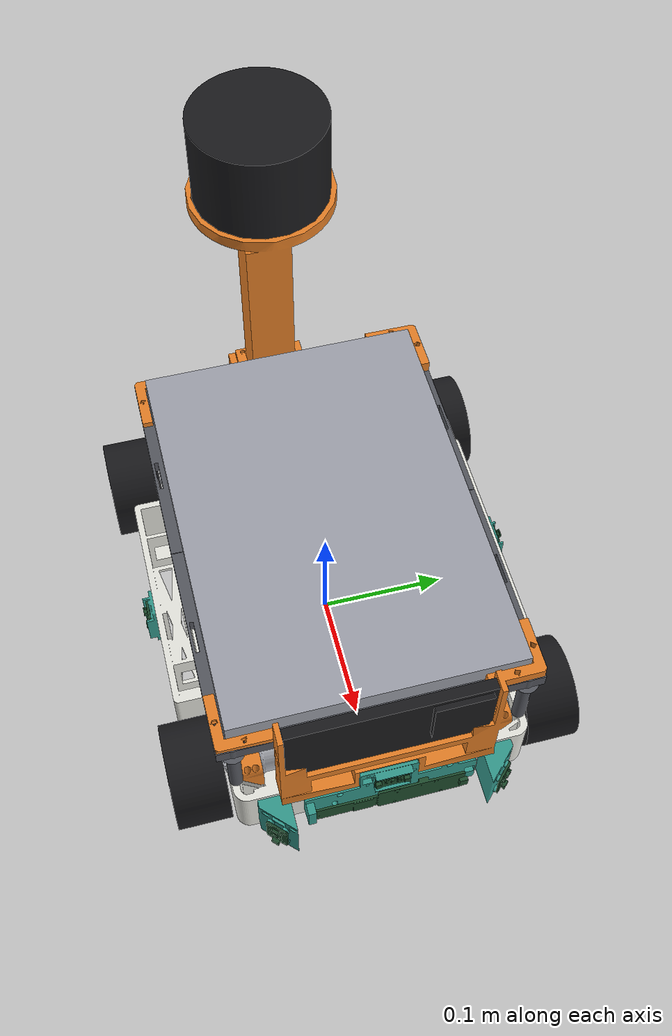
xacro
<?xml version="1.0"?>
<robot name="mini_tesla" xmlns:xacro="http://www.ros.org/wiki/xacro" xmlns:gz="http://gazebosim.org/schema">

  <xacro:arg name="drive" default="mecanum"/>
  <xacro:arg name="laptop" default="true"/>

  <xacro:property name="pkg" value="$(find mini_tesla_description)"/>
  <xacro:property name="mesh_scale" value="0.001 0.001 0.001"/>

  <!-- ===== geometry from the CAD (metres) ===== -->
  <xacro:property name="ground_clearance" value="0.021"/>
  <xacro:property name="wheel_radius" value="0.0375"/>
  <xacro:property name="wheel_width" value="0.0408"/>
  <xacro:property name="wheel_x" value="0.13305"/>       <!-- axle x, front +, rear - -->
  <xacro:property name="wheel_y" value="0.1344"/>        <!-- wheel centre y -->
  <xacro:property name="wheel_z" value="0.0165"/>        <!-- axle height in base_link -->
  <xacro:property name="body_len" value="0.3561"/>
  <xacro:property name="body_wid" value="0.279"/>        <!-- across the side extensions -->
  <xacro:property name="body_h" value="0.049"/>

  <!-- ===== masses (estimated: printed volume x 1.25 g/cc x ~60 % fill, datasheets for bought parts) ===== -->
  <xacro:property name="m_base" value="2.30"/>           <!-- printed chassis + mounts, 4 motors, drivers, boards -->
  <xacro:property name="m_deck" value="0.40"/>
  <xacro:property name="m_battery" value="0.80"/>
  <xacro:property name="m_laptop" value="1.50"/>
  <xacro:property name="m_wheel" value="0.12"/>          <!-- REV 75 mm mecanum + printed adapter -->

  <!-- motor: Pololu 37D 19:1 -> ~530 rpm no-load = 55 rad/s -->
  <xacro:property name="wheel_vel_limit" value="55.0"/>
  <xacro:property name="wheel_effort_limit" value="0.6"/>

  <!-- ===== materials ===== -->
  <material name="chassis_white"><color rgba="0.90 0.90 0.87 1"/></material>
  <material name="deck_grey"><color rgba="0.33 0.34 0.37 1"/></material>
  <material name="orange"><color rgba="0.90 0.50 0.15 1"/></material>
  <material name="teal"><color rgba="0.20 0.60 0.55 1"/></material>
  <material name="motor_silver"><color rgba="0.72 0.73 0.76 1"/></material>
  <material name="pcb"><color rgba="0.12 0.30 0.18 1"/></material>
  <material name="black"><color rgba="0.10 0.10 0.11 1"/></material>
  <material name="battery_blue"><color rgba="0.25 0.35 0.65 1"/></material>
  <material name="laptop_grey"><color rgba="0.62 0.63 0.67 1"/></material>

  <!-- ===== inertia helpers ===== -->
  <xacro:macro name="box_inertial" params="m x y z *origin">
    <inertial>
      <xacro:insert_block name="origin"/>
      <mass value="${m}"/>
      <inertia ixx="${m*(y*y+z*z)/12}" ixy="0" ixz="0" iyy="${m*(x*x+z*z)/12}" iyz="0" izz="${m*(x*x+y*y)/12}"/>
    </inertial>
  </xacro:macro>

  <xacro:macro name="mesh_visual" params="name material">
    <visual>
      <origin xyz="0 0 0" rpy="0 0 0"/>
      <geometry><mesh filename="file://${pkg}/meshes/${name}.stl" scale="${mesh_scale}"/></geometry>
      <material name="${material}"/>
    </visual>
  </xacro:macro>

  <!-- ===================== BASE ===================== -->
  <link name="base_footprint"/>

  <joint name="base_joint" type="fixed">
    <parent link="base_footprint"/>
    <child link="base_link"/>
    <origin xyz="0 0 ${ground_clearance}" rpy="0 0 0"/>
  </joint>

  <link name="base_link">
    <xacro:mesh_visual name="chassis" material="chassis_white"/>
    <xacro:mesh_visual name="mounts" material="orange"/>
    <xacro:mesh_visual name="sensor_mounts" material="teal"/>
    <xacro:mesh_visual name="motors" material="motor_silver"/>
    <xacro:mesh_visual name="electronics" material="pcb"/>
    <collision>
      <origin xyz="0 0 ${body_h/2}" rpy="0 0 0"/>
      <geometry><box size="${body_len} ${body_wid} ${body_h}"/></geometry>
    </collision>
    <xacro:box_inertial m="${m_base}" x="${body_len}" y="${body_wid}" z="0.06">
      <origin xyz="0.008 0 0.024" rpy="0 0 0"/>
    </xacro:box_inertial>
  </link>

  <!-- laptop deck (2 halves + corner guards are in the mesh) -->
  <joint name="deck_joint" type="fixed">
    <parent link="base_link"/>
    <child link="deck_link"/>
    <origin xyz="0 0 0" rpy="0 0 0"/>
  </joint>
  <link name="deck_link">
    <xacro:mesh_visual name="deck" material="deck_grey"/>
    <collision>
      <origin xyz="0 0 0.1045" rpy="0 0 0"/>
      <geometry><box size="0.329 0.238 0.011"/></geometry>
    </collision>
    <xacro:box_inertial m="${m_deck}" x="0.329" y="0.238" z="0.06">
      <origin xyz="0 0 0.095" rpy="0 0 0"/>
    </xacro:box_inertial>
  </link>

  <!-- 6S 5200 mAh battery, crosswise in the centre bay -->
  <joint name="battery_joint" type="fixed">
    <parent link="base_link"/>
    <child link="battery_link"/>
    <origin xyz="0 0 0.0255" rpy="0 0 0"/>
  </joint>
  <link name="battery_link">
    <visual>
      <geometry><box size="0.054 0.156 0.045"/></geometry>
      <material name="battery_blue"/>
    </visual>
    <xacro:box_inertial m="${m_battery}" x="0.054" y="0.156" z="0.045">
      <origin xyz="0 0 0" rpy="0 0 0"/>
    </xacro:box_inertial>
  </link>

  <!-- ASUS ROG Zephyrus G14 (lid closed), lying lengthwise on the deck -->
  <xacro:if value="$(arg laptop)">
    <joint name="laptop_joint" type="fixed">
      <parent link="base_link"/>
      <child link="laptop_link"/>
      <origin xyz="0 0 0.11815" rpy="0 0 0"/>
    </joint>
    <link name="laptop_link">
      <visual>
        <geometry><box size="0.311 0.220 0.0163"/></geometry>
        <material name="laptop_grey"/>
      </visual>
      <collision>
        <geometry><box size="0.311 0.220 0.0163"/></geometry>
      </collision>
      <xacro:box_inertial m="${m_laptop}" x="0.311" y="0.220" z="0.0163">
        <origin xyz="0 0 0" rpy="0 0 0"/>
      </xacro:box_inertial>
    </link>
  </xacro:if>

  <!-- ===================== WHEELS ===================== -->
  <!-- All wheel axes are +Y, so a positive joint velocity drives every wheel forward. -->
  <xacro:macro name="wheel" params="name x y side">
    <joint name="${name}_wheel_joint" type="continuous">
      <parent link="base_link"/>
      <child link="${name}_wheel_link"/>
      <origin xyz="${x} ${y} ${wheel_z}" rpy="0 0 0"/>
      <axis xyz="0 1 0"/>
      <limit effort="${wheel_effort_limit}" velocity="${wheel_vel_limit}"/>
      <dynamics damping="0.002" friction="0.0"/>
    </joint>
    <link name="${name}_wheel_link">
      <visual>
        <geometry><mesh filename="file://${pkg}/meshes/wheel_${side}.stl" scale="${mesh_scale}"/></geometry>
        <material name="black"/>
      </visual>
      <!-- sphere contact: rolls cleanly in every direction; friction direction set in gazebo.xacro -->
      <collision>
        <geometry><sphere radius="${wheel_radius}"/></geometry>
      </collision>
      <inertial>
        <mass value="${m_wheel}"/>
        <inertia ixx="${m_wheel*(3*wheel_radius*wheel_radius+wheel_width*wheel_width)/12}" ixy="0" ixz="0"
                 iyy="${m_wheel*wheel_radius*wheel_radius/2}" iyz="0"
                 izz="${m_wheel*(3*wheel_radius*wheel_radius+wheel_width*wheel_width)/12}"/>
      </inertial>
    </link>
  </xacro:macro>

  <xacro:wheel name="front_left"  x="${wheel_x}"  y="${wheel_y}"  side="left"/>
  <xacro:wheel name="front_right" x="${wheel_x}"  y="${-wheel_y}" side="right"/>
  <xacro:wheel name="rear_left"   x="${-wheel_x}" y="${wheel_y}"  side="left"/>
  <xacro:wheel name="rear_right"  x="${-wheel_x}" y="${-wheel_y}" side="right"/>

  <!-- ===================== SENSORS + GAZEBO ===================== -->
  <xacro:include filename="$(find mini_tesla_description)/urdf/sensors.xacro"/>
  <xacro:include filename="$(find mini_tesla_description)/urdf/gazebo.xacro"/>

</robot>

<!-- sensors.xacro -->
<robot xmlns:xacro="http://www.ros.org/wiki/xacro">

  <xacro:property name="sensor_z" value="0.023"/>   <!-- ToF + radar centres, 44 mm above the floor -->

  <!-- ===================== VL53L1X ToF ===================== -->
  <xacro:macro name="tof" params="name x y yaw z:=${sensor_z}">
    <joint name="tof_${name}_joint" type="fixed">
      <parent link="base_link"/>
      <child link="tof_${name}_link"/>
      <origin xyz="${x} ${y} ${z}" rpy="0 0 ${yaw}"/>
    </joint>
    <link name="tof_${name}_link"/>
    <gazebo reference="tof_${name}_link">
      <sensor name="tof_${name}" type="gpu_lidar">
        <gz_frame_id>tof_${name}_link</gz_frame_id>
        <topic>/tof/${name}/scan</topic>
        <update_rate>30</update_rate>
        <always_on>true</always_on>
        <visualize>false</visualize>
        <lidar>
          <scan>
            <horizontal>
              <samples>5</samples>
              <resolution>1</resolution>
              <min_angle>-0.2356</min_angle>
              <max_angle>0.2356</max_angle>
            </horizontal>
            <vertical>
              <samples>1</samples>
              <resolution>1</resolution>
              <min_angle>0</min_angle>
              <max_angle>0</max_angle>
            </vertical>
          </scan>
          <range>
            <min>0.04</min>
            <max>4.0</max>
            <resolution>0.001</resolution>
          </range>
          <noise>
            <type>gaussian</type>
            <mean>0.0</mean>
            <stddev>0.01</stddev>
          </noise>
        </lidar>
      </sensor>
    </gazebo>
  </xacro:macro>

  <!-- rev3: four pods on the faces (front one is raised onto the phone-mount side, z 62 mm) and four
       45 deg corner boards. Positions are the CAD board centres. -->
  <xacro:tof name="front"       x="0.1938"  y="0"       yaw="0"        z="0.062"/>
  <xacro:tof name="rear"        x="-0.1948" y="0"       yaw="${pi}"/>
  <xacro:tof name="left"        x="0"       y="0.1463"  yaw="${pi/2}"/>
  <xacro:tof name="right"       x="0"       y="-0.1463" yaw="${-pi/2}"/>
  <xacro:tof name="front_left"  x="0.197"   y="0.086"   yaw="${pi/4}"/>
  <xacro:tof name="front_right" x="0.197"   y="-0.086"  yaw="${-pi/4}"/>
  <xacro:tof name="rear_left"   x="-0.197"  y="0.086"   yaw="${3*pi/4}"/>
  <xacro:tof name="rear_right"  x="-0.197"  y="-0.086"  yaw="${-3*pi/4}"/>

  <!-- ===================== TI IWR6843AOPEVM radar ===================== -->
  <xacro:macro name="radar" params="name x y yaw">
    <joint name="radar_${name}_joint" type="fixed">
      <parent link="base_link"/>
      <child link="radar_${name}_link"/>
      <origin xyz="${x} ${y} ${sensor_z}" rpy="0 0 ${yaw}"/>
    </joint>
    <link name="radar_${name}_link"/>
    <gazebo reference="radar_${name}_link">
      <sensor name="radar_${name}" type="gpu_lidar">
        <gz_frame_id>radar_${name}_link</gz_frame_id>
        <topic>/radar/${name}/scan</topic>
        <update_rate>10</update_rate>
        <always_on>true</always_on>
        <visualize>false</visualize>
        <lidar>
          <scan>
            <horizontal>
              <samples>64</samples>
              <resolution>1</resolution>
              <min_angle>-1.0472</min_angle>
              <max_angle>1.0472</max_angle>
            </horizontal>
            <vertical>
              <samples>8</samples>
              <resolution>1</resolution>
              <min_angle>-0.3491</min_angle>
              <max_angle>0.3491</max_angle>
            </vertical>
          </scan>
          <range>
            <min>0.10</min>
            <max>10.0</max>
            <resolution>0.04</resolution>
          </range>
          <noise>
            <type>gaussian</type>
            <mean>0.0</mean>
            <stddev>0.03</stddev>
          </noise>
        </lidar>
      </sensor>
    </gazebo>
  </xacro:macro>

  <!-- front: antenna (chip) centre on the front bumper -->
  <xacro:radar name="front" x="0.1920" y="-0.0201" yaw="0"/>

  <!-- ===================== iPhone 16 Pro (front phone mount) ===================== -->
  <xacro:property name="m_phone" value="0.199"/>
  <joint name="iphone_joint" type="fixed">
    <parent link="base_link"/>
    <child link="iphone_link"/>
    <origin xyz="0.1791 0 0.1128" rpy="0 0 0"/>
  </joint>
  <link name="iphone_link">
    <visual>
      <geometry><mesh filename="file://${pkg}/meshes/iphone.stl" scale="${mesh_scale}"/></geometry>
      <material name="black"/>
    </visual>
    <collision>
      <origin xyz="-0.002 0 0" rpy="0 0 0"/>
      <geometry><box size="0.0126 0.1496 0.0715"/></geometry>
    </collision>
    <xacro:box_inertial m="${m_phone}" x="0.0083" y="0.1496" z="0.0715">
      <origin xyz="-0.002 0 0" rpy="0 0 0"/>
    </xacro:box_inertial>
  </link>

  <joint name="iphone_camera_joint" type="fixed">
    <parent link="iphone_link"/>
    <child link="iphone_camera_link"/>
    <origin xyz="0.0064 0.050 0.011" rpy="0 0 0"/>
  </joint>
  <link name="iphone_camera_link"/>

  <joint name="iphone_optical_joint" type="fixed">
    <parent link="iphone_camera_link"/>
    <child link="iphone_optical_frame"/>
    <origin xyz="0 0 0" rpy="${-pi/2} 0 ${-pi/2}"/>
  </joint>
  <link name="iphone_optical_frame"/>

  <joint name="iphone_imu_joint" type="fixed">
    <parent link="iphone_link"/>
    <child link="iphone_imu_link"/>
    <origin xyz="0 0 0" rpy="0 0 0"/>
  </joint>
  <link name="iphone_imu_link"/>

  <gazebo reference="iphone_camera_link">
    <sensor name="iphone_rgbd" type="rgbd_camera">
      <gz_frame_id>iphone_optical_frame</gz_frame_id>
      <topic>/iphone/rgbd</topic>
      <update_rate>30</update_rate>
      <always_on>true</always_on>
      <visualize>true</visualize>
      <camera>
        <horizontal_fov>1.246</horizontal_fov>
        <image>
          <width>640</width>
          <height>480</height>
          <format>R8G8B8</format>
        </image>
        <clip>
          <near>0.05</near>
          <far>15.0</far>
        </clip>
        <depth_camera>
          <clip>
            <near>0.20</near>
            <far>5.0</far>
          </clip>
        </depth_camera>
        <noise>
          <type>gaussian</type>
          <mean>0.0</mean>
          <stddev>0.005</stddev>
        </noise>
      </camera>
    </sensor>
  </gazebo>

  <gazebo reference="iphone_imu_link">
    <sensor name="iphone_imu" type="imu">
      <gz_frame_id>iphone_imu_link</gz_frame_id>
      <topic>/iphone/imu</topic>
      <update_rate>100</update_rate>
      <always_on>true</always_on>
      <imu>
        <angular_velocity>
          <x><noise type="gaussian"><mean>0</mean><stddev>0.002</stddev></noise></x>
          <y><noise type="gaussian"><mean>0</mean><stddev>0.002</stddev></noise></y>
          <z><noise type="gaussian"><mean>0</mean><stddev>0.002</stddev></noise></z>
        </angular_velocity>
        <linear_acceleration>
          <x><noise type="gaussian"><mean>0</mean><stddev>0.02</stddev></noise></x>
          <y><noise type="gaussian"><mean>0</mean><stddev>0.02</stddev></noise></y>
          <z><noise type="gaussian"><mean>0</mean><stddev>0.02</stddev></noise></z>
        </linear_acceleration>
      </imu>
    </sensor>
  </gazebo>

  <!-- ===================== Velodyne Puck LITE on the rear mast ===================== -->
  <xacro:property name="m_velodyne" value="0.59"/>
  <joint name="velodyne_base_joint" type="fixed">
    <parent link="base_link"/>
    <child link="velodyne_base_link"/>
    <origin xyz="-0.192 0 0.272" rpy="0 0 0"/>
  </joint>
  <link name="velodyne_base_link">
    <visual>
      <geometry><mesh filename="file://${pkg}/meshes/velodyne_puck.stl" scale="${mesh_scale}"/></geometry>
      <material name="black"/>
    </visual>
    <collision>
      <origin xyz="0 0 0.03585" rpy="0 0 0"/>
      <geometry><cylinder radius="0.05165" length="0.0717"/></geometry>
    </collision>
    <inertial>
      <origin xyz="0 0 0.03585" rpy="0 0 0"/>
      <mass value="${m_velodyne}"/>
      <inertia ixx="${m_velodyne*(3*0.05165*0.05165+0.0717*0.0717)/12}" ixy="0" ixz="0"
               iyy="${m_velodyne*(3*0.05165*0.05165+0.0717*0.0717)/12}" iyz="0"
               izz="${m_velodyne*0.05165*0.05165/2}"/>
    </inertial>
  </link>

  <joint name="velodyne_joint" type="fixed">
    <parent link="velodyne_base_link"/>
    <child link="velodyne"/>
    <origin xyz="0 0 0.0378" rpy="0 0 0"/>
  </joint>
  <link name="velodyne"/>

  <gazebo reference="velodyne">
    <sensor name="velodyne" type="gpu_lidar">
      <gz_frame_id>velodyne</gz_frame_id>
      <topic>/velodyne/scan</topic>
      <update_rate>10</update_rate>
      <always_on>true</always_on>
      <visualize>false</visualize>
      <lidar>
        <scan>
          <horizontal>
            <samples>1800</samples>
            <resolution>1</resolution>
            <min_angle>-3.14159</min_angle>
            <max_angle>3.14159</max_angle>
          </horizontal>
          <vertical>
            <samples>16</samples>
            <resolution>1</resolution>
            <min_angle>-0.2618</min_angle>
            <max_angle>0.2618</max_angle>
          </vertical>
        </scan>
        <range>
          <min>0.5</min>
          <max>100.0</max>
          <resolution>0.003</resolution>
        </range>
        <noise>
          <type>gaussian</type>
          <mean>0.0</mean>
          <stddev>0.03</stddev>
        </noise>
      </lidar>
    </sensor>
  </gazebo>

</robot>
